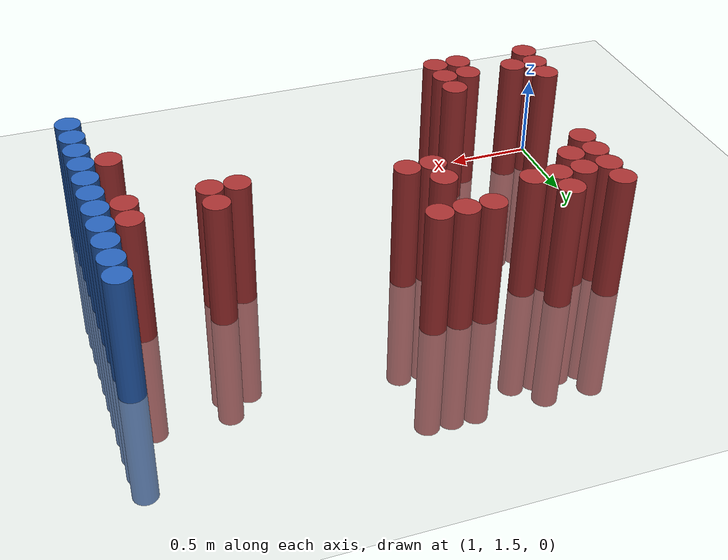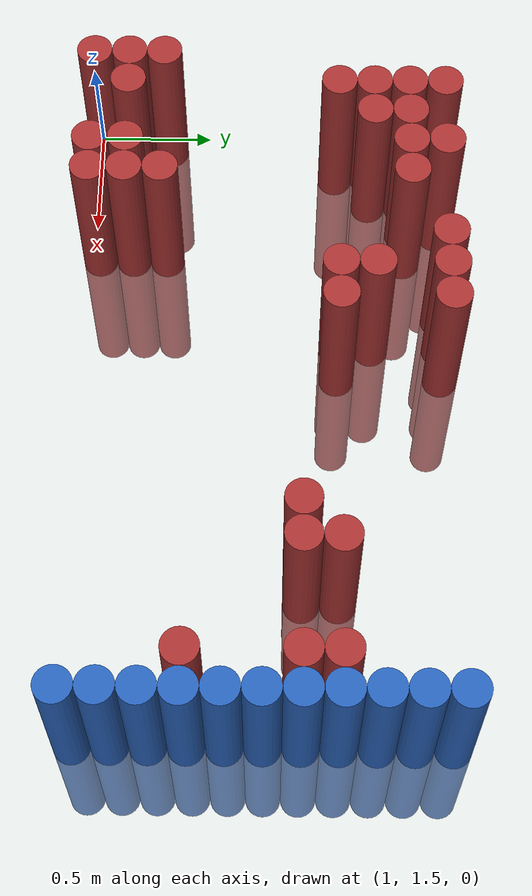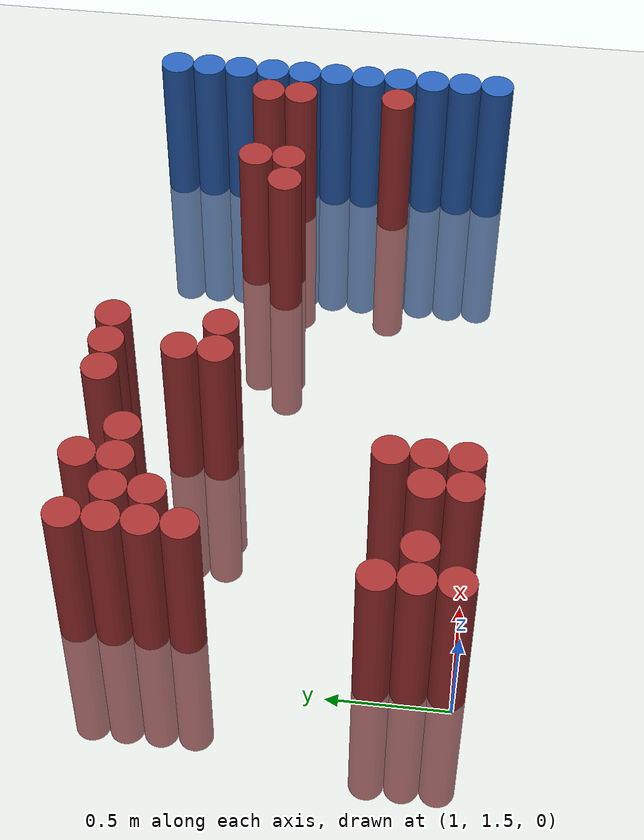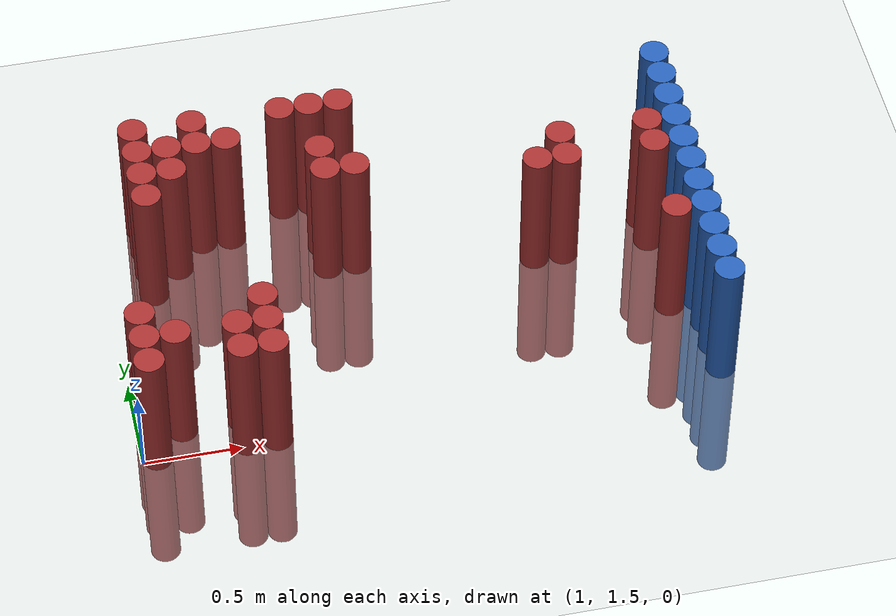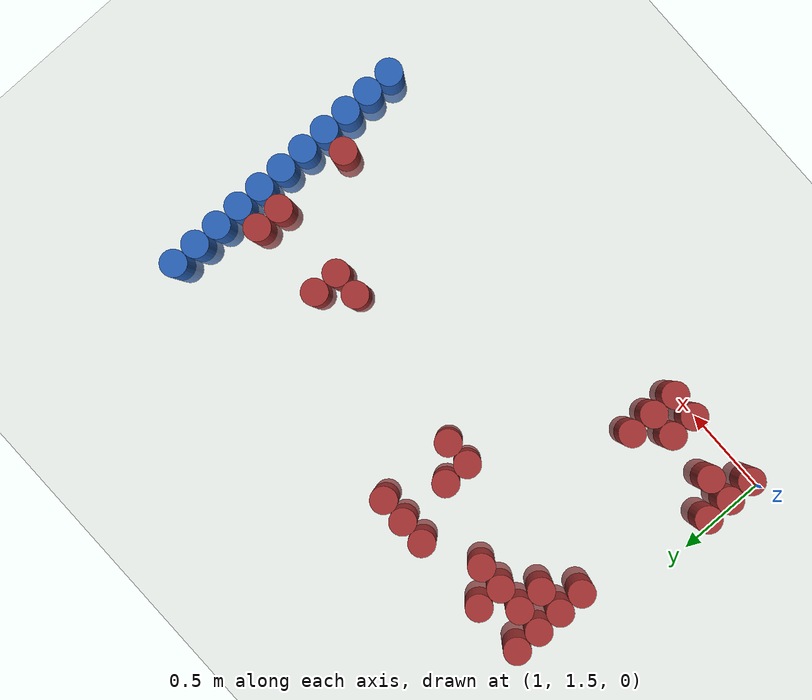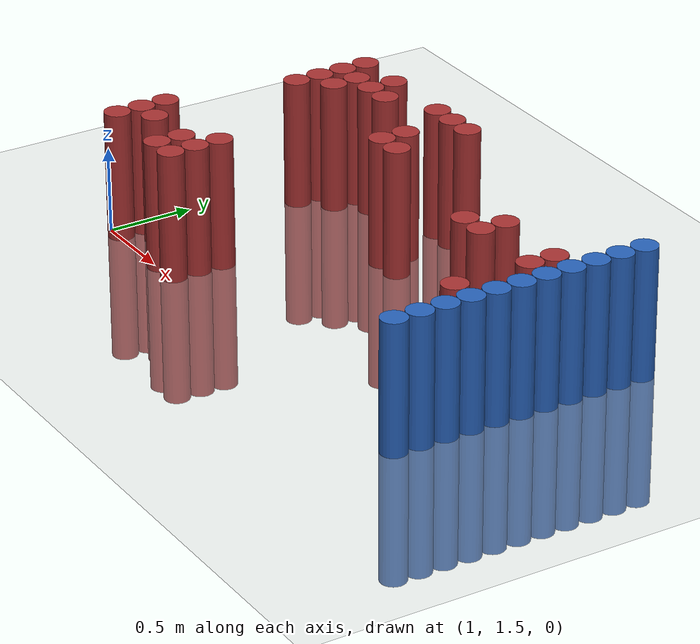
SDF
<sdf version="1.6">
 <world name="default">
  <model name="ground_plane">
   <static>1</static>
   <link name="link">
    <collision name="collision">
     <geometry><plane><normal>0 0 1</normal><size>100 100</size></plane></geometry>
     <surface><friction><ode><mu>100</mu><mu2>50</mu2></ode></friction></surface>
    </collision>
    <visual name="visual">
     <cast_shadows>0</cast_shadows>
     <geometry><plane><normal>0 0 1</normal><size>100 100</size></plane></geometry>
     <material>
      <script><uri>file://media/materials/scripts/gazebo.material</uri><name>Gazebo/Grey</name></script>
     </material>
    </visual>
   </link>
  </model>
  <model name="unit_cylinder_134">
   <static>1</static>
   <pose>3.925000 1.525000 0.000000 0.000000 0.000000 0.000000</pose>
   <link name="link">
    <inertial>
     <mass>1</mass>
     <inertia><ixx>0.145833</ixx><ixy>0</ixy><ixz>0</ixz><iyy>0.145833</iyy><iyz>0</iyz><izz>0.125</izz></inertia>
    </inertial>
    <collision name="collision">
     <geometry><cylinder><radius>0.075000</radius><length>1.5</length></cylinder></geometry>
    </collision>
    <visual name="visual">
     <geometry><cylinder><radius>0.075000</radius><length>1.5</length></cylinder></geometry>
     <material>
      <ambient>0.152000 0.379000 0.720000 1</ambient>
      <diffuse>0.152000 0.379000 0.720000 1</diffuse>
     </material>
     <material>
      <script><name>Gazebo/Grey</name><uri>file://media/materials/scripts/gazebo.material</uri></script>
     </material>
    </visual>
   </link>
  </model>
  <model name="unit_cylinder_136">
   <static>1</static>
   <pose>3.925000 1.675000 0.000000 0.000000 0.000000 0.000000</pose>
   <link name="link">
    <inertial>
     <mass>1</mass>
     <inertia><ixx>0.145833</ixx><ixy>0</ixy><ixz>0</ixz><iyy>0.145833</iyy><iyz>0</iyz><izz>0.125</izz></inertia>
    </inertial>
    <collision name="collision">
     <geometry><cylinder><radius>0.075000</radius><length>1.5</length></cylinder></geometry>
    </collision>
    <visual name="visual">
     <geometry><cylinder><radius>0.075000</radius><length>1.5</length></cylinder></geometry>
     <material>
      <ambient>0.152000 0.379000 0.720000 1</ambient>
      <diffuse>0.152000 0.379000 0.720000 1</diffuse>
     </material>
     <material>
      <script><name>Gazebo/Grey</name><uri>file://media/materials/scripts/gazebo.material</uri></script>
     </material>
    </visual>
   </link>
  </model>
  <model name="unit_cylinder_138">
   <static>1</static>
   <pose>3.925000 1.825000 0.000000 0.000000 0.000000 0.000000</pose>
   <link name="link">
    <inertial>
     <mass>1</mass>
     <inertia><ixx>0.145833</ixx><ixy>0</ixy><ixz>0</ixz><iyy>0.145833</iyy><iyz>0</iyz><izz>0.125</izz></inertia>
    </inertial>
    <collision name="collision">
     <geometry><cylinder><radius>0.075000</radius><length>1.5</length></cylinder></geometry>
    </collision>
    <visual name="visual">
     <geometry><cylinder><radius>0.075000</radius><length>1.5</length></cylinder></geometry>
     <material>
      <ambient>0.152000 0.379000 0.720000 1</ambient>
      <diffuse>0.152000 0.379000 0.720000 1</diffuse>
     </material>
     <material>
      <script><name>Gazebo/Grey</name><uri>file://media/materials/scripts/gazebo.material</uri></script>
     </material>
    </visual>
   </link>
  </model>
  <model name="unit_cylinder_140">
   <static>1</static>
   <pose>3.925000 1.975000 0.000000 0.000000 0.000000 0.000000</pose>
   <link name="link">
    <inertial>
     <mass>1</mass>
     <inertia><ixx>0.145833</ixx><ixy>0</ixy><ixz>0</ixz><iyy>0.145833</iyy><iyz>0</iyz><izz>0.125</izz></inertia>
    </inertial>
    <collision name="collision">
     <geometry><cylinder><radius>0.075000</radius><length>1.5</length></cylinder></geometry>
    </collision>
    <visual name="visual">
     <geometry><cylinder><radius>0.075000</radius><length>1.5</length></cylinder></geometry>
     <material>
      <ambient>0.152000 0.379000 0.720000 1</ambient>
      <diffuse>0.152000 0.379000 0.720000 1</diffuse>
     </material>
     <material>
      <script><name>Gazebo/Grey</name><uri>file://media/materials/scripts/gazebo.material</uri></script>
     </material>
    </visual>
   </link>
  </model>
  <model name="unit_cylinder_142">
   <static>1</static>
   <pose>3.925000 2.125000 0.000000 0.000000 0.000000 0.000000</pose>
   <link name="link">
    <inertial>
     <mass>1</mass>
     <inertia><ixx>0.145833</ixx><ixy>0</ixy><ixz>0</ixz><iyy>0.145833</iyy><iyz>0</iyz><izz>0.125</izz></inertia>
    </inertial>
    <collision name="collision">
     <geometry><cylinder><radius>0.075000</radius><length>1.5</length></cylinder></geometry>
    </collision>
    <visual name="visual">
     <geometry><cylinder><radius>0.075000</radius><length>1.5</length></cylinder></geometry>
     <material>
      <ambient>0.152000 0.379000 0.720000 1</ambient>
      <diffuse>0.152000 0.379000 0.720000 1</diffuse>
     </material>
     <material>
      <script><name>Gazebo/Grey</name><uri>file://media/materials/scripts/gazebo.material</uri></script>
     </material>
    </visual>
   </link>
  </model>
  <model name="unit_cylinder_144">
   <static>1</static>
   <pose>3.925000 2.275000 0.000000 0.000000 0.000000 0.000000</pose>
   <link name="link">
    <inertial>
     <mass>1</mass>
     <inertia><ixx>0.145833</ixx><ixy>0</ixy><ixz>0</ixz><iyy>0.145833</iyy><iyz>0</iyz><izz>0.125</izz></inertia>
    </inertial>
    <collision name="collision">
     <geometry><cylinder><radius>0.075000</radius><length>1.5</length></cylinder></geometry>
    </collision>
    <visual name="visual">
     <geometry><cylinder><radius>0.075000</radius><length>1.5</length></cylinder></geometry>
     <material>
      <ambient>0.152000 0.379000 0.720000 1</ambient>
      <diffuse>0.152000 0.379000 0.720000 1</diffuse>
     </material>
     <material>
      <script><name>Gazebo/Grey</name><uri>file://media/materials/scripts/gazebo.material</uri></script>
     </material>
    </visual>
   </link>
  </model>
  <model name="unit_cylinder_146">
   <static>1</static>
   <pose>3.925000 2.425000 0.000000 0.000000 0.000000 0.000000</pose>
   <link name="link">
    <inertial>
     <mass>1</mass>
     <inertia><ixx>0.145833</ixx><ixy>0</ixy><ixz>0</ixz><iyy>0.145833</iyy><iyz>0</iyz><izz>0.125</izz></inertia>
    </inertial>
    <collision name="collision">
     <geometry><cylinder><radius>0.075000</radius><length>1.5</length></cylinder></geometry>
    </collision>
    <visual name="visual">
     <geometry><cylinder><radius>0.075000</radius><length>1.5</length></cylinder></geometry>
     <material>
      <ambient>0.152000 0.379000 0.720000 1</ambient>
      <diffuse>0.152000 0.379000 0.720000 1</diffuse>
     </material>
     <material>
      <script><name>Gazebo/Grey</name><uri>file://media/materials/scripts/gazebo.material</uri></script>
     </material>
    </visual>
   </link>
  </model>
  <model name="unit_cylinder_148">
   <static>1</static>
   <pose>3.925000 2.575000 0.000000 0.000000 0.000000 0.000000</pose>
   <link name="link">
    <inertial>
     <mass>1</mass>
     <inertia><ixx>0.145833</ixx><ixy>0</ixy><ixz>0</ixz><iyy>0.145833</iyy><iyz>0</iyz><izz>0.125</izz></inertia>
    </inertial>
    <collision name="collision">
     <geometry><cylinder><radius>0.075000</radius><length>1.5</length></cylinder></geometry>
    </collision>
    <visual name="visual">
     <geometry><cylinder><radius>0.075000</radius><length>1.5</length></cylinder></geometry>
     <material>
      <ambient>0.152000 0.379000 0.720000 1</ambient>
      <diffuse>0.152000 0.379000 0.720000 1</diffuse>
     </material>
     <material>
      <script><name>Gazebo/Grey</name><uri>file://media/materials/scripts/gazebo.material</uri></script>
     </material>
    </visual>
   </link>
  </model>
  <model name="unit_cylinder_150">
   <static>1</static>
   <pose>3.925000 2.725000 0.000000 0.000000 0.000000 0.000000</pose>
   <link name="link">
    <inertial>
     <mass>1</mass>
     <inertia><ixx>0.145833</ixx><ixy>0</ixy><ixz>0</ixz><iyy>0.145833</iyy><iyz>0</iyz><izz>0.125</izz></inertia>
    </inertial>
    <collision name="collision">
     <geometry><cylinder><radius>0.075000</radius><length>1.5</length></cylinder></geometry>
    </collision>
    <visual name="visual">
     <geometry><cylinder><radius>0.075000</radius><length>1.5</length></cylinder></geometry>
     <material>
      <ambient>0.152000 0.379000 0.720000 1</ambient>
      <diffuse>0.152000 0.379000 0.720000 1</diffuse>
     </material>
     <material>
      <script><name>Gazebo/Grey</name><uri>file://media/materials/scripts/gazebo.material</uri></script>
     </material>
    </visual>
   </link>
  </model>
  <model name="unit_cylinder_152">
   <static>1</static>
   <pose>3.925000 2.875000 0.000000 0.000000 0.000000 0.000000</pose>
   <link name="link">
    <inertial>
     <mass>1</mass>
     <inertia><ixx>0.145833</ixx><ixy>0</ixy><ixz>0</ixz><iyy>0.145833</iyy><iyz>0</iyz><izz>0.125</izz></inertia>
    </inertial>
    <collision name="collision">
     <geometry><cylinder><radius>0.075000</radius><length>1.5</length></cylinder></geometry>
    </collision>
    <visual name="visual">
     <geometry><cylinder><radius>0.075000</radius><length>1.5</length></cylinder></geometry>
     <material>
      <ambient>0.152000 0.379000 0.720000 1</ambient>
      <diffuse>0.152000 0.379000 0.720000 1</diffuse>
     </material>
     <material>
      <script><name>Gazebo/Grey</name><uri>file://media/materials/scripts/gazebo.material</uri></script>
     </material>
    </visual>
   </link>
  </model>
  <model name="unit_cylinder_154">
   <static>1</static>
   <pose>3.925000 3.025000 0.000000 0.000000 0.000000 0.000000</pose>
   <link name="link">
    <inertial>
     <mass>1</mass>
     <inertia><ixx>0.145833</ixx><ixy>0</ixy><ixz>0</ixz><iyy>0.145833</iyy><iyz>0</iyz><izz>0.125</izz></inertia>
    </inertial>
    <collision name="collision">
     <geometry><cylinder><radius>0.075000</radius><length>1.5</length></cylinder></geometry>
    </collision>
    <visual name="visual">
     <geometry><cylinder><radius>0.075000</radius><length>1.5</length></cylinder></geometry>
     <material>
      <ambient>0.152000 0.379000 0.720000 1</ambient>
      <diffuse>0.152000 0.379000 0.720000 1</diffuse>
     </material>
     <material>
      <script><name>Gazebo/Grey</name><uri>file://media/materials/scripts/gazebo.material</uri></script>
     </material>
    </visual>
   </link>
  </model>
  <model name="unit_cylinder_417">
   <static>1</static>
   <pose>1.075000 1.525000 0.000000 0.000000 0.000000 0.000000</pose>
   <link name="link">
    <inertial>
     <mass>1</mass>
     <inertia><ixx>0.145833</ixx><ixy>0</ixy><ixz>0</ixz><iyy>0.145833</iyy><iyz>0</iyz><izz>0.125</izz></inertia>
    </inertial>
    <collision name="collision">
     <geometry><cylinder><radius>0.075000</radius><length>1.5</length></cylinder></geometry>
    </collision>
    <visual name="visual">
     <geometry><cylinder><radius>0.075000</radius><length>1.5</length></cylinder></geometry>
     <material>
      <ambient>0.648000 0.192000 0.192000 1</ambient>
      <diffuse>0.648000 0.192000 0.192000 1</diffuse>
     </material>
     <material>
      <script><name>Gazebo/Grey</name><uri>file://media/materials/scripts/gazebo.material</uri></script>
     </material>
    </visual>
   </link>
  </model>
  <model name="unit_cylinder_418">
   <static>1</static>
   <pose>1.075000 1.675000 0.000000 0.000000 0.000000 0.000000</pose>
   <link name="link">
    <inertial>
     <mass>1</mass>
     <inertia><ixx>0.145833</ixx><ixy>0</ixy><ixz>0</ixz><iyy>0.145833</iyy><iyz>0</iyz><izz>0.125</izz></inertia>
    </inertial>
    <collision name="collision">
     <geometry><cylinder><radius>0.075000</radius><length>1.5</length></cylinder></geometry>
    </collision>
    <visual name="visual">
     <geometry><cylinder><radius>0.075000</radius><length>1.5</length></cylinder></geometry>
     <material>
      <ambient>0.648000 0.192000 0.192000 1</ambient>
      <diffuse>0.648000 0.192000 0.192000 1</diffuse>
     </material>
     <material>
      <script><name>Gazebo/Grey</name><uri>file://media/materials/scripts/gazebo.material</uri></script>
     </material>
    </visual>
   </link>
  </model>
  <model name="unit_cylinder_419">
   <static>1</static>
   <pose>1.075000 1.825000 0.000000 0.000000 0.000000 0.000000</pose>
   <link name="link">
    <inertial>
     <mass>1</mass>
     <inertia><ixx>0.145833</ixx><ixy>0</ixy><ixz>0</ixz><iyy>0.145833</iyy><iyz>0</iyz><izz>0.125</izz></inertia>
    </inertial>
    <collision name="collision">
     <geometry><cylinder><radius>0.075000</radius><length>1.5</length></cylinder></geometry>
    </collision>
    <visual name="visual">
     <geometry><cylinder><radius>0.075000</radius><length>1.5</length></cylinder></geometry>
     <material>
      <ambient>0.648000 0.192000 0.192000 1</ambient>
      <diffuse>0.648000 0.192000 0.192000 1</diffuse>
     </material>
     <material>
      <script><name>Gazebo/Grey</name><uri>file://media/materials/scripts/gazebo.material</uri></script>
     </material>
    </visual>
   </link>
  </model>
  <model name="unit_cylinder_427">
   <static>1</static>
   <pose>1.225000 1.675000 0.000000 0.000000 0.000000 0.000000</pose>
   <link name="link">
    <inertial>
     <mass>1</mass>
     <inertia><ixx>0.145833</ixx><ixy>0</ixy><ixz>0</ixz><iyy>0.145833</iyy><iyz>0</iyz><izz>0.125</izz></inertia>
    </inertial>
    <collision name="collision">
     <geometry><cylinder><radius>0.075000</radius><length>1.5</length></cylinder></geometry>
    </collision>
    <visual name="visual">
     <geometry><cylinder><radius>0.075000</radius><length>1.5</length></cylinder></geometry>
     <material>
      <ambient>0.648000 0.192000 0.192000 1</ambient>
      <diffuse>0.648000 0.192000 0.192000 1</diffuse>
     </material>
     <material>
      <script><name>Gazebo/Grey</name><uri>file://media/materials/scripts/gazebo.material</uri></script>
     </material>
    </visual>
   </link>
  </model>
  <model name="unit_cylinder_428">
   <static>1</static>
   <pose>1.225000 2.575000 0.000000 0.000000 0.000000 0.000000</pose>
   <link name="link">
    <inertial>
     <mass>1</mass>
     <inertia><ixx>0.145833</ixx><ixy>0</ixy><ixz>0</ixz><iyy>0.145833</iyy><iyz>0</iyz><izz>0.125</izz></inertia>
    </inertial>
    <collision name="collision">
     <geometry><cylinder><radius>0.075000</radius><length>1.5</length></cylinder></geometry>
    </collision>
    <visual name="visual">
     <geometry><cylinder><radius>0.075000</radius><length>1.5</length></cylinder></geometry>
     <material>
      <ambient>0.648000 0.192000 0.192000 1</ambient>
      <diffuse>0.648000 0.192000 0.192000 1</diffuse>
     </material>
     <material>
      <script><name>Gazebo/Grey</name><uri>file://media/materials/scripts/gazebo.material</uri></script>
     </material>
    </visual>
   </link>
  </model>
  <model name="unit_cylinder_429">
   <static>1</static>
   <pose>1.225000 2.725000 0.000000 0.000000 0.000000 0.000000</pose>
   <link name="link">
    <inertial>
     <mass>1</mass>
     <inertia><ixx>0.145833</ixx><ixy>0</ixy><ixz>0</ixz><iyy>0.145833</iyy><iyz>0</iyz><izz>0.125</izz></inertia>
    </inertial>
    <collision name="collision">
     <geometry><cylinder><radius>0.075000</radius><length>1.5</length></cylinder></geometry>
    </collision>
    <visual name="visual">
     <geometry><cylinder><radius>0.075000</radius><length>1.5</length></cylinder></geometry>
     <material>
      <ambient>0.648000 0.192000 0.192000 1</ambient>
      <diffuse>0.648000 0.192000 0.192000 1</diffuse>
     </material>
     <material>
      <script><name>Gazebo/Grey</name><uri>file://media/materials/scripts/gazebo.material</uri></script>
     </material>
    </visual>
   </link>
  </model>
  <model name="unit_cylinder_430">
   <static>1</static>
   <pose>1.225000 2.875000 0.000000 0.000000 0.000000 0.000000</pose>
   <link name="link">
    <inertial>
     <mass>1</mass>
     <inertia><ixx>0.145833</ixx><ixy>0</ixy><ixz>0</ixz><iyy>0.145833</iyy><iyz>0</iyz><izz>0.125</izz></inertia>
    </inertial>
    <collision name="collision">
     <geometry><cylinder><radius>0.075000</radius><length>1.5</length></cylinder></geometry>
    </collision>
    <visual name="visual">
     <geometry><cylinder><radius>0.075000</radius><length>1.5</length></cylinder></geometry>
     <material>
      <ambient>0.648000 0.192000 0.192000 1</ambient>
      <diffuse>0.648000 0.192000 0.192000 1</diffuse>
     </material>
     <material>
      <script><name>Gazebo/Grey</name><uri>file://media/materials/scripts/gazebo.material</uri></script>
     </material>
    </visual>
   </link>
  </model>
  <model name="unit_cylinder_431">
   <static>1</static>
   <pose>1.225000 3.025000 0.000000 0.000000 0.000000 0.000000</pose>
   <link name="link">
    <inertial>
     <mass>1</mass>
     <inertia><ixx>0.145833</ixx><ixy>0</ixy><ixz>0</ixz><iyy>0.145833</iyy><iyz>0</iyz><izz>0.125</izz></inertia>
    </inertial>
    <collision name="collision">
     <geometry><cylinder><radius>0.075000</radius><length>1.5</length></cylinder></geometry>
    </collision>
    <visual name="visual">
     <geometry><cylinder><radius>0.075000</radius><length>1.5</length></cylinder></geometry>
     <material>
      <ambient>0.648000 0.192000 0.192000 1</ambient>
      <diffuse>0.648000 0.192000 0.192000 1</diffuse>
     </material>
     <material>
      <script><name>Gazebo/Grey</name><uri>file://media/materials/scripts/gazebo.material</uri></script>
     </material>
    </visual>
   </link>
  </model>
  <model name="unit_cylinder_439">
   <static>1</static>
   <pose>1.375000 2.725000 0.000000 0.000000 0.000000 0.000000</pose>
   <link name="link">
    <inertial>
     <mass>1</mass>
     <inertia><ixx>0.145833</ixx><ixy>0</ixy><ixz>0</ixz><iyy>0.145833</iyy><iyz>0</iyz><izz>0.125</izz></inertia>
    </inertial>
    <collision name="collision">
     <geometry><cylinder><radius>0.075000</radius><length>1.5</length></cylinder></geometry>
    </collision>
    <visual name="visual">
     <geometry><cylinder><radius>0.075000</radius><length>1.5</length></cylinder></geometry>
     <material>
      <ambient>0.648000 0.192000 0.192000 1</ambient>
      <diffuse>0.648000 0.192000 0.192000 1</diffuse>
     </material>
     <material>
      <script><name>Gazebo/Grey</name><uri>file://media/materials/scripts/gazebo.material</uri></script>
     </material>
    </visual>
   </link>
  </model>
  <model name="unit_cylinder_440">
   <static>1</static>
   <pose>1.375000 2.875000 0.000000 0.000000 0.000000 0.000000</pose>
   <link name="link">
    <inertial>
     <mass>1</mass>
     <inertia><ixx>0.145833</ixx><ixy>0</ixy><ixz>0</ixz><iyy>0.145833</iyy><iyz>0</iyz><izz>0.125</izz></inertia>
    </inertial>
    <collision name="collision">
     <geometry><cylinder><radius>0.075000</radius><length>1.5</length></cylinder></geometry>
    </collision>
    <visual name="visual">
     <geometry><cylinder><radius>0.075000</radius><length>1.5</length></cylinder></geometry>
     <material>
      <ambient>0.648000 0.192000 0.192000 1</ambient>
      <diffuse>0.648000 0.192000 0.192000 1</diffuse>
     </material>
     <material>
      <script><name>Gazebo/Grey</name><uri>file://media/materials/scripts/gazebo.material</uri></script>
     </material>
    </visual>
   </link>
  </model>
  <model name="unit_cylinder_450">
   <static>1</static>
   <pose>1.525000 1.525000 0.000000 0.000000 0.000000 0.000000</pose>
   <link name="link">
    <inertial>
     <mass>1</mass>
     <inertia><ixx>0.145833</ixx><ixy>0</ixy><ixz>0</ixz><iyy>0.145833</iyy><iyz>0</iyz><izz>0.125</izz></inertia>
    </inertial>
    <collision name="collision">
     <geometry><cylinder><radius>0.075000</radius><length>1.5</length></cylinder></geometry>
    </collision>
    <visual name="visual">
     <geometry><cylinder><radius>0.075000</radius><length>1.5</length></cylinder></geometry>
     <material>
      <ambient>0.648000 0.192000 0.192000 1</ambient>
      <diffuse>0.648000 0.192000 0.192000 1</diffuse>
     </material>
     <material>
      <script><name>Gazebo/Grey</name><uri>file://media/materials/scripts/gazebo.material</uri></script>
     </material>
    </visual>
   </link>
  </model>
  <model name="unit_cylinder_451">
   <static>1</static>
   <pose>1.525000 1.675000 0.000000 0.000000 0.000000 0.000000</pose>
   <link name="link">
    <inertial>
     <mass>1</mass>
     <inertia><ixx>0.145833</ixx><ixy>0</ixy><ixz>0</ixz><iyy>0.145833</iyy><iyz>0</iyz><izz>0.125</izz></inertia>
    </inertial>
    <collision name="collision">
     <geometry><cylinder><radius>0.075000</radius><length>1.5</length></cylinder></geometry>
    </collision>
    <visual name="visual">
     <geometry><cylinder><radius>0.075000</radius><length>1.5</length></cylinder></geometry>
     <material>
      <ambient>0.648000 0.192000 0.192000 1</ambient>
      <diffuse>0.648000 0.192000 0.192000 1</diffuse>
     </material>
     <material>
      <script><name>Gazebo/Grey</name><uri>file://media/materials/scripts/gazebo.material</uri></script>
     </material>
    </visual>
   </link>
  </model>
  <model name="unit_cylinder_452">
   <static>1</static>
   <pose>1.525000 2.875000 0.000000 0.000000 0.000000 0.000000</pose>
   <link name="link">
    <inertial>
     <mass>1</mass>
     <inertia><ixx>0.145833</ixx><ixy>0</ixy><ixz>0</ixz><iyy>0.145833</iyy><iyz>0</iyz><izz>0.125</izz></inertia>
    </inertial>
    <collision name="collision">
     <geometry><cylinder><radius>0.075000</radius><length>1.5</length></cylinder></geometry>
    </collision>
    <visual name="visual">
     <geometry><cylinder><radius>0.075000</radius><length>1.5</length></cylinder></geometry>
     <material>
      <ambient>0.648000 0.192000 0.192000 1</ambient>
      <diffuse>0.648000 0.192000 0.192000 1</diffuse>
     </material>
     <material>
      <script><name>Gazebo/Grey</name><uri>file://media/materials/scripts/gazebo.material</uri></script>
     </material>
    </visual>
   </link>
  </model>
  <model name="unit_cylinder_453">
   <static>1</static>
   <pose>1.525000 3.025000 0.000000 0.000000 0.000000 0.000000</pose>
   <link name="link">
    <inertial>
     <mass>1</mass>
     <inertia><ixx>0.145833</ixx><ixy>0</ixy><ixz>0</ixz><iyy>0.145833</iyy><iyz>0</iyz><izz>0.125</izz></inertia>
    </inertial>
    <collision name="collision">
     <geometry><cylinder><radius>0.075000</radius><length>1.5</length></cylinder></geometry>
    </collision>
    <visual name="visual">
     <geometry><cylinder><radius>0.075000</radius><length>1.5</length></cylinder></geometry>
     <material>
      <ambient>0.648000 0.192000 0.192000 1</ambient>
      <diffuse>0.648000 0.192000 0.192000 1</diffuse>
     </material>
     <material>
      <script><name>Gazebo/Grey</name><uri>file://media/materials/scripts/gazebo.material</uri></script>
     </material>
    </visual>
   </link>
  </model>
  <model name="unit_cylinder_460">
   <static>1</static>
   <pose>1.675000 1.525000 0.000000 0.000000 0.000000 0.000000</pose>
   <link name="link">
    <inertial>
     <mass>1</mass>
     <inertia><ixx>0.145833</ixx><ixy>0</ixy><ixz>0</ixz><iyy>0.145833</iyy><iyz>0</iyz><izz>0.125</izz></inertia>
    </inertial>
    <collision name="collision">
     <geometry><cylinder><radius>0.075000</radius><length>1.5</length></cylinder></geometry>
    </collision>
    <visual name="visual">
     <geometry><cylinder><radius>0.075000</radius><length>1.5</length></cylinder></geometry>
     <material>
      <ambient>0.648000 0.192000 0.192000 1</ambient>
      <diffuse>0.648000 0.192000 0.192000 1</diffuse>
     </material>
     <material>
      <script><name>Gazebo/Grey</name><uri>file://media/materials/scripts/gazebo.material</uri></script>
     </material>
    </visual>
   </link>
  </model>
  <model name="unit_cylinder_461">
   <static>1</static>
   <pose>1.675000 1.675000 0.000000 0.000000 0.000000 0.000000</pose>
   <link name="link">
    <inertial>
     <mass>1</mass>
     <inertia><ixx>0.145833</ixx><ixy>0</ixy><ixz>0</ixz><iyy>0.145833</iyy><iyz>0</iyz><izz>0.125</izz></inertia>
    </inertial>
    <collision name="collision">
     <geometry><cylinder><radius>0.075000</radius><length>1.5</length></cylinder></geometry>
    </collision>
    <visual name="visual">
     <geometry><cylinder><radius>0.075000</radius><length>1.5</length></cylinder></geometry>
     <material>
      <ambient>0.648000 0.192000 0.192000 1</ambient>
      <diffuse>0.648000 0.192000 0.192000 1</diffuse>
     </material>
     <material>
      <script><name>Gazebo/Grey</name><uri>file://media/materials/scripts/gazebo.material</uri></script>
     </material>
    </visual>
   </link>
  </model>
  <model name="unit_cylinder_462">
   <static>1</static>
   <pose>1.675000 1.825000 0.000000 0.000000 0.000000 0.000000</pose>
   <link name="link">
    <inertial>
     <mass>1</mass>
     <inertia><ixx>0.145833</ixx><ixy>0</ixy><ixz>0</ixz><iyy>0.145833</iyy><iyz>0</iyz><izz>0.125</izz></inertia>
    </inertial>
    <collision name="collision">
     <geometry><cylinder><radius>0.075000</radius><length>1.5</length></cylinder></geometry>
    </collision>
    <visual name="visual">
     <geometry><cylinder><radius>0.075000</radius><length>1.5</length></cylinder></geometry>
     <material>
      <ambient>0.648000 0.192000 0.192000 1</ambient>
      <diffuse>0.648000 0.192000 0.192000 1</diffuse>
     </material>
     <material>
      <script><name>Gazebo/Grey</name><uri>file://media/materials/scripts/gazebo.material</uri></script>
     </material>
    </visual>
   </link>
  </model>
  <model name="unit_cylinder_463">
   <static>1</static>
   <pose>1.675000 2.875000 0.000000 0.000000 0.000000 0.000000</pose>
   <link name="link">
    <inertial>
     <mass>1</mass>
     <inertia><ixx>0.145833</ixx><ixy>0</ixy><ixz>0</ixz><iyy>0.145833</iyy><iyz>0</iyz><izz>0.125</izz></inertia>
    </inertial>
    <collision name="collision">
     <geometry><cylinder><radius>0.075000</radius><length>1.5</length></cylinder></geometry>
    </collision>
    <visual name="visual">
     <geometry><cylinder><radius>0.075000</radius><length>1.5</length></cylinder></geometry>
     <material>
      <ambient>0.648000 0.192000 0.192000 1</ambient>
      <diffuse>0.648000 0.192000 0.192000 1</diffuse>
     </material>
     <material>
      <script><name>Gazebo/Grey</name><uri>file://media/materials/scripts/gazebo.material</uri></script>
     </material>
    </visual>
   </link>
  </model>
  <model name="unit_cylinder_474">
   <static>1</static>
   <pose>1.975000 3.025000 0.000000 0.000000 0.000000 0.000000</pose>
   <link name="link">
    <inertial>
     <mass>1</mass>
     <inertia><ixx>0.145833</ixx><ixy>0</ixy><ixz>0</ixz><iyy>0.145833</iyy><iyz>0</iyz><izz>0.125</izz></inertia>
    </inertial>
    <collision name="collision">
     <geometry><cylinder><radius>0.075000</radius><length>1.5</length></cylinder></geometry>
    </collision>
    <visual name="visual">
     <geometry><cylinder><radius>0.075000</radius><length>1.5</length></cylinder></geometry>
     <material>
      <ambient>0.648000 0.192000 0.192000 1</ambient>
      <diffuse>0.648000 0.192000 0.192000 1</diffuse>
     </material>
     <material>
      <script><name>Gazebo/Grey</name><uri>file://media/materials/scripts/gazebo.material</uri></script>
     </material>
    </visual>
   </link>
  </model>
  <model name="unit_cylinder_481">
   <static>1</static>
   <pose>2.125000 2.575000 0.000000 0.000000 0.000000 0.000000</pose>
   <link name="link">
    <inertial>
     <mass>1</mass>
     <inertia><ixx>0.145833</ixx><ixy>0</ixy><ixz>0</ixz><iyy>0.145833</iyy><iyz>0</iyz><izz>0.125</izz></inertia>
    </inertial>
    <collision name="collision">
     <geometry><cylinder><radius>0.075000</radius><length>1.5</length></cylinder></geometry>
    </collision>
    <visual name="visual">
     <geometry><cylinder><radius>0.075000</radius><length>1.5</length></cylinder></geometry>
     <material>
      <ambient>0.648000 0.192000 0.192000 1</ambient>
      <diffuse>0.648000 0.192000 0.192000 1</diffuse>
     </material>
     <material>
      <script><name>Gazebo/Grey</name><uri>file://media/materials/scripts/gazebo.material</uri></script>
     </material>
    </visual>
   </link>
  </model>
  <model name="unit_cylinder_482">
   <static>1</static>
   <pose>2.125000 2.725000 0.000000 0.000000 0.000000 0.000000</pose>
   <link name="link">
    <inertial>
     <mass>1</mass>
     <inertia><ixx>0.145833</ixx><ixy>0</ixy><ixz>0</ixz><iyy>0.145833</iyy><iyz>0</iyz><izz>0.125</izz></inertia>
    </inertial>
    <collision name="collision">
     <geometry><cylinder><radius>0.075000</radius><length>1.5</length></cylinder></geometry>
    </collision>
    <visual name="visual">
     <geometry><cylinder><radius>0.075000</radius><length>1.5</length></cylinder></geometry>
     <material>
      <ambient>0.648000 0.192000 0.192000 1</ambient>
      <diffuse>0.648000 0.192000 0.192000 1</diffuse>
     </material>
     <material>
      <script><name>Gazebo/Grey</name><uri>file://media/materials/scripts/gazebo.material</uri></script>
     </material>
    </visual>
   </link>
  </model>
  <model name="unit_cylinder_483">
   <static>1</static>
   <pose>2.125000 3.025000 0.000000 0.000000 0.000000 0.000000</pose>
   <link name="link">
    <inertial>
     <mass>1</mass>
     <inertia><ixx>0.145833</ixx><ixy>0</ixy><ixz>0</ixz><iyy>0.145833</iyy><iyz>0</iyz><izz>0.125</izz></inertia>
    </inertial>
    <collision name="collision">
     <geometry><cylinder><radius>0.075000</radius><length>1.5</length></cylinder></geometry>
    </collision>
    <visual name="visual">
     <geometry><cylinder><radius>0.075000</radius><length>1.5</length></cylinder></geometry>
     <material>
      <ambient>0.648000 0.192000 0.192000 1</ambient>
      <diffuse>0.648000 0.192000 0.192000 1</diffuse>
     </material>
     <material>
      <script><name>Gazebo/Grey</name><uri>file://media/materials/scripts/gazebo.material</uri></script>
     </material>
    </visual>
   </link>
  </model>
  <model name="unit_cylinder_490">
   <static>1</static>
   <pose>2.275000 2.575000 0.000000 0.000000 0.000000 0.000000</pose>
   <link name="link">
    <inertial>
     <mass>1</mass>
     <inertia><ixx>0.145833</ixx><ixy>0</ixy><ixz>0</ixz><iyy>0.145833</iyy><iyz>0</iyz><izz>0.125</izz></inertia>
    </inertial>
    <collision name="collision">
     <geometry><cylinder><radius>0.075000</radius><length>1.5</length></cylinder></geometry>
    </collision>
    <visual name="visual">
     <geometry><cylinder><radius>0.075000</radius><length>1.5</length></cylinder></geometry>
     <material>
      <ambient>0.648000 0.192000 0.192000 1</ambient>
      <diffuse>0.648000 0.192000 0.192000 1</diffuse>
     </material>
     <material>
      <script><name>Gazebo/Grey</name><uri>file://media/materials/scripts/gazebo.material</uri></script>
     </material>
    </visual>
   </link>
  </model>
  <model name="unit_cylinder_491">
   <static>1</static>
   <pose>2.275000 3.025000 0.000000 0.000000 0.000000 0.000000</pose>
   <link name="link">
    <inertial>
     <mass>1</mass>
     <inertia><ixx>0.145833</ixx><ixy>0</ixy><ixz>0</ixz><iyy>0.145833</iyy><iyz>0</iyz><izz>0.125</izz></inertia>
    </inertial>
    <collision name="collision">
     <geometry><cylinder><radius>0.075000</radius><length>1.5</length></cylinder></geometry>
    </collision>
    <visual name="visual">
     <geometry><cylinder><radius>0.075000</radius><length>1.5</length></cylinder></geometry>
     <material>
      <ambient>0.648000 0.192000 0.192000 1</ambient>
      <diffuse>0.648000 0.192000 0.192000 1</diffuse>
     </material>
     <material>
      <script><name>Gazebo/Grey</name><uri>file://media/materials/scripts/gazebo.material</uri></script>
     </material>
    </visual>
   </link>
  </model>
  <model name="unit_cylinder_532">
   <static>1</static>
   <pose>3.175000 2.425000 0.000000 0.000000 0.000000 0.000000</pose>
   <link name="link">
    <inertial>
     <mass>1</mass>
     <inertia><ixx>0.145833</ixx><ixy>0</ixy><ixz>0</ixz><iyy>0.145833</iyy><iyz>0</iyz><izz>0.125</izz></inertia>
    </inertial>
    <collision name="collision">
     <geometry><cylinder><radius>0.075000</radius><length>1.5</length></cylinder></geometry>
    </collision>
    <visual name="visual">
     <geometry><cylinder><radius>0.075000</radius><length>1.5</length></cylinder></geometry>
     <material>
      <ambient>0.648000 0.192000 0.192000 1</ambient>
      <diffuse>0.648000 0.192000 0.192000 1</diffuse>
     </material>
     <material>
      <script><name>Gazebo/Grey</name><uri>file://media/materials/scripts/gazebo.material</uri></script>
     </material>
    </visual>
   </link>
  </model>
  <model name="unit_cylinder_540">
   <static>1</static>
   <pose>3.325000 2.425000 0.000000 0.000000 0.000000 0.000000</pose>
   <link name="link">
    <inertial>
     <mass>1</mass>
     <inertia><ixx>0.145833</ixx><ixy>0</ixy><ixz>0</ixz><iyy>0.145833</iyy><iyz>0</iyz><izz>0.125</izz></inertia>
    </inertial>
    <collision name="collision">
     <geometry><cylinder><radius>0.075000</radius><length>1.5</length></cylinder></geometry>
    </collision>
    <visual name="visual">
     <geometry><cylinder><radius>0.075000</radius><length>1.5</length></cylinder></geometry>
     <material>
      <ambient>0.648000 0.192000 0.192000 1</ambient>
      <diffuse>0.648000 0.192000 0.192000 1</diffuse>
     </material>
     <material>
      <script><name>Gazebo/Grey</name><uri>file://media/materials/scripts/gazebo.material</uri></script>
     </material>
    </visual>
   </link>
  </model>
  <model name="unit_cylinder_541">
   <static>1</static>
   <pose>3.325000 2.575000 0.000000 0.000000 0.000000 0.000000</pose>
   <link name="link">
    <inertial>
     <mass>1</mass>
     <inertia><ixx>0.145833</ixx><ixy>0</ixy><ixz>0</ixz><iyy>0.145833</iyy><iyz>0</iyz><izz>0.125</izz></inertia>
    </inertial>
    <collision name="collision">
     <geometry><cylinder><radius>0.075000</radius><length>1.5</length></cylinder></geometry>
    </collision>
    <visual name="visual">
     <geometry><cylinder><radius>0.075000</radius><length>1.5</length></cylinder></geometry>
     <material>
      <ambient>0.648000 0.192000 0.192000 1</ambient>
      <diffuse>0.648000 0.192000 0.192000 1</diffuse>
     </material>
     <material>
      <script><name>Gazebo/Grey</name><uri>file://media/materials/scripts/gazebo.material</uri></script>
     </material>
    </visual>
   </link>
  </model>
  <model name="unit_cylinder_561">
   <static>1</static>
   <pose>3.775000 1.975000 0.000000 0.000000 0.000000 0.000000</pose>
   <link name="link">
    <inertial>
     <mass>1</mass>
     <inertia><ixx>0.145833</ixx><ixy>0</ixy><ixz>0</ixz><iyy>0.145833</iyy><iyz>0</iyz><izz>0.125</izz></inertia>
    </inertial>
    <collision name="collision">
     <geometry><cylinder><radius>0.075000</radius><length>1.5</length></cylinder></geometry>
    </collision>
    <visual name="visual">
     <geometry><cylinder><radius>0.075000</radius><length>1.5</length></cylinder></geometry>
     <material>
      <ambient>0.648000 0.192000 0.192000 1</ambient>
      <diffuse>0.648000 0.192000 0.192000 1</diffuse>
     </material>
     <material>
      <script><name>Gazebo/Grey</name><uri>file://media/materials/scripts/gazebo.material</uri></script>
     </material>
    </visual>
   </link>
  </model>
  <model name="unit_cylinder_562">
   <static>1</static>
   <pose>3.775000 2.425000 0.000000 0.000000 0.000000 0.000000</pose>
   <link name="link">
    <inertial>
     <mass>1</mass>
     <inertia><ixx>0.145833</ixx><ixy>0</ixy><ixz>0</ixz><iyy>0.145833</iyy><iyz>0</iyz><izz>0.125</izz></inertia>
    </inertial>
    <collision name="collision">
     <geometry><cylinder><radius>0.075000</radius><length>1.5</length></cylinder></geometry>
    </collision>
    <visual name="visual">
     <geometry><cylinder><radius>0.075000</radius><length>1.5</length></cylinder></geometry>
     <material>
      <ambient>0.648000 0.192000 0.192000 1</ambient>
      <diffuse>0.648000 0.192000 0.192000 1</diffuse>
     </material>
     <material>
      <script><name>Gazebo/Grey</name><uri>file://media/materials/scripts/gazebo.material</uri></script>
     </material>
    </visual>
   </link>
  </model>
  <model name="unit_cylinder_563">
   <static>1</static>
   <pose>3.775000 2.575000 0.000000 0.000000 0.000000 0.000000</pose>
   <link name="link">
    <inertial>
     <mass>1</mass>
     <inertia><ixx>0.145833</ixx><ixy>0</ixy><ixz>0</ixz><iyy>0.145833</iyy><iyz>0</iyz><izz>0.125</izz></inertia>
    </inertial>
    <collision name="collision">
     <geometry><cylinder><radius>0.075000</radius><length>1.5</length></cylinder></geometry>
    </collision>
    <visual name="visual">
     <geometry><cylinder><radius>0.075000</radius><length>1.5</length></cylinder></geometry>
     <material>
      <ambient>0.648000 0.192000 0.192000 1</ambient>
      <diffuse>0.648000 0.192000 0.192000 1</diffuse>
     </material>
     <material>
      <script><name>Gazebo/Grey</name><uri>file://media/materials/scripts/gazebo.material</uri></script>
     </material>
    </visual>
   </link>
  </model>
  <model name="unit_cylinder_595">
   <static>1</static>
   <pose>3.925000 1.525000 0.000000 0.000000 0.000000 0.000000</pose>
   <link name="link">
    <inertial>
     <mass>1</mass>
     <inertia><ixx>0.145833</ixx><ixy>0</ixy><ixz>0</ixz><iyy>0.145833</iyy><iyz>0</iyz><izz>0.125</izz></inertia>
    </inertial>
    <collision name="collision">
     <geometry><cylinder><radius>0.075000</radius><length>1.5</length></cylinder></geometry>
    </collision>
    <visual name="visual">
     <geometry><cylinder><radius>0.075000</radius><length>1.5</length></cylinder></geometry>
     <material>
      <ambient>0.152000 0.379000 0.720000 1</ambient>
      <diffuse>0.152000 0.379000 0.720000 1</diffuse>
     </material>
     <material>
      <script><name>Gazebo/Grey</name><uri>file://media/materials/scripts/gazebo.material</uri></script>
     </material>
    </visual>
   </link>
  </model>
  <model name="unit_cylinder_596">
   <static>1</static>
   <pose>3.925000 1.675000 0.000000 0.000000 0.000000 0.000000</pose>
   <link name="link">
    <inertial>
     <mass>1</mass>
     <inertia><ixx>0.145833</ixx><ixy>0</ixy><ixz>0</ixz><iyy>0.145833</iyy><iyz>0</iyz><izz>0.125</izz></inertia>
    </inertial>
    <collision name="collision">
     <geometry><cylinder><radius>0.075000</radius><length>1.5</length></cylinder></geometry>
    </collision>
    <visual name="visual">
     <geometry><cylinder><radius>0.075000</radius><length>1.5</length></cylinder></geometry>
     <material>
      <ambient>0.152000 0.379000 0.720000 1</ambient>
      <diffuse>0.152000 0.379000 0.720000 1</diffuse>
     </material>
     <material>
      <script><name>Gazebo/Grey</name><uri>file://media/materials/scripts/gazebo.material</uri></script>
     </material>
    </visual>
   </link>
  </model>
  <model name="unit_cylinder_597">
   <static>1</static>
   <pose>3.925000 1.825000 0.000000 0.000000 0.000000 0.000000</pose>
   <link name="link">
    <inertial>
     <mass>1</mass>
     <inertia><ixx>0.145833</ixx><ixy>0</ixy><ixz>0</ixz><iyy>0.145833</iyy><iyz>0</iyz><izz>0.125</izz></inertia>
    </inertial>
    <collision name="collision">
     <geometry><cylinder><radius>0.075000</radius><length>1.5</length></cylinder></geometry>
    </collision>
    <visual name="visual">
     <geometry><cylinder><radius>0.075000</radius><length>1.5</length></cylinder></geometry>
     <material>
      <ambient>0.152000 0.379000 0.720000 1</ambient>
      <diffuse>0.152000 0.379000 0.720000 1</diffuse>
     </material>
     <material>
      <script><name>Gazebo/Grey</name><uri>file://media/materials/scripts/gazebo.material</uri></script>
     </material>
    </visual>
   </link>
  </model>
  <model name="unit_cylinder_598">
   <static>1</static>
   <pose>3.925000 1.975000 0.000000 0.000000 0.000000 0.000000</pose>
   <link name="link">
    <inertial>
     <mass>1</mass>
     <inertia><ixx>0.145833</ixx><ixy>0</ixy><ixz>0</ixz><iyy>0.145833</iyy><iyz>0</iyz><izz>0.125</izz></inertia>
    </inertial>
    <collision name="collision">
     <geometry><cylinder><radius>0.075000</radius><length>1.5</length></cylinder></geometry>
    </collision>
    <visual name="visual">
     <geometry><cylinder><radius>0.075000</radius><length>1.5</length></cylinder></geometry>
     <material>
      <ambient>0.152000 0.379000 0.720000 1</ambient>
      <diffuse>0.152000 0.379000 0.720000 1</diffuse>
     </material>
     <material>
      <script><name>Gazebo/Grey</name><uri>file://media/materials/scripts/gazebo.material</uri></script>
     </material>
    </visual>
   </link>
  </model>
  <model name="unit_cylinder_599">
   <static>1</static>
   <pose>3.925000 2.125000 0.000000 0.000000 0.000000 0.000000</pose>
   <link name="link">
    <inertial>
     <mass>1</mass>
     <inertia><ixx>0.145833</ixx><ixy>0</ixy><ixz>0</ixz><iyy>0.145833</iyy><iyz>0</iyz><izz>0.125</izz></inertia>
    </inertial>
    <collision name="collision">
     <geometry><cylinder><radius>0.075000</radius><length>1.5</length></cylinder></geometry>
    </collision>
    <visual name="visual">
     <geometry><cylinder><radius>0.075000</radius><length>1.5</length></cylinder></geometry>
     <material>
      <ambient>0.152000 0.379000 0.720000 1</ambient>
      <diffuse>0.152000 0.379000 0.720000 1</diffuse>
     </material>
     <material>
      <script><name>Gazebo/Grey</name><uri>file://media/materials/scripts/gazebo.material</uri></script>
     </material>
    </visual>
   </link>
  </model>
  <model name="unit_cylinder_600">
   <static>1</static>
   <pose>3.925000 2.275000 0.000000 0.000000 0.000000 0.000000</pose>
   <link name="link">
    <inertial>
     <mass>1</mass>
     <inertia><ixx>0.145833</ixx><ixy>0</ixy><ixz>0</ixz><iyy>0.145833</iyy><iyz>0</iyz><izz>0.125</izz></inertia>
    </inertial>
    <collision name="collision">
     <geometry><cylinder><radius>0.075000</radius><length>1.5</length></cylinder></geometry>
    </collision>
    <visual name="visual">
     <geometry><cylinder><radius>0.075000</radius><length>1.5</length></cylinder></geometry>
     <material>
      <ambient>0.152000 0.379000 0.720000 1</ambient>
      <diffuse>0.152000 0.379000 0.720000 1</diffuse>
     </material>
     <material>
      <script><name>Gazebo/Grey</name><uri>file://media/materials/scripts/gazebo.material</uri></script>
     </material>
    </visual>
   </link>
  </model>
  <model name="unit_cylinder_601">
   <static>1</static>
   <pose>3.925000 2.425000 0.000000 0.000000 0.000000 0.000000</pose>
   <link name="link">
    <inertial>
     <mass>1</mass>
     <inertia><ixx>0.145833</ixx><ixy>0</ixy><ixz>0</ixz><iyy>0.145833</iyy><iyz>0</iyz><izz>0.125</izz></inertia>
    </inertial>
    <collision name="collision">
     <geometry><cylinder><radius>0.075000</radius><length>1.5</length></cylinder></geometry>
    </collision>
    <visual name="visual">
     <geometry><cylinder><radius>0.075000</radius><length>1.5</length></cylinder></geometry>
     <material>
      <ambient>0.152000 0.379000 0.720000 1</ambient>
      <diffuse>0.152000 0.379000 0.720000 1</diffuse>
     </material>
     <material>
      <script><name>Gazebo/Grey</name><uri>file://media/materials/scripts/gazebo.material</uri></script>
     </material>
    </visual>
   </link>
  </model>
  <model name="unit_cylinder_602">
   <static>1</static>
   <pose>3.925000 2.575000 0.000000 0.000000 0.000000 0.000000</pose>
   <link name="link">
    <inertial>
     <mass>1</mass>
     <inertia><ixx>0.145833</ixx><ixy>0</ixy><ixz>0</ixz><iyy>0.145833</iyy><iyz>0</iyz><izz>0.125</izz></inertia>
    </inertial>
    <collision name="collision">
     <geometry><cylinder><radius>0.075000</radius><length>1.5</length></cylinder></geometry>
    </collision>
    <visual name="visual">
     <geometry><cylinder><radius>0.075000</radius><length>1.5</length></cylinder></geometry>
     <material>
      <ambient>0.152000 0.379000 0.720000 1</ambient>
      <diffuse>0.152000 0.379000 0.720000 1</diffuse>
     </material>
     <material>
      <script><name>Gazebo/Grey</name><uri>file://media/materials/scripts/gazebo.material</uri></script>
     </material>
    </visual>
   </link>
  </model>
  <model name="unit_cylinder_603">
   <static>1</static>
   <pose>3.925000 2.725000 0.000000 0.000000 0.000000 0.000000</pose>
   <link name="link">
    <inertial>
     <mass>1</mass>
     <inertia><ixx>0.145833</ixx><ixy>0</ixy><ixz>0</ixz><iyy>0.145833</iyy><iyz>0</iyz><izz>0.125</izz></inertia>
    </inertial>
    <collision name="collision">
     <geometry><cylinder><radius>0.075000</radius><length>1.5</length></cylinder></geometry>
    </collision>
    <visual name="visual">
     <geometry><cylinder><radius>0.075000</radius><length>1.5</length></cylinder></geometry>
     <material>
      <ambient>0.152000 0.379000 0.720000 1</ambient>
      <diffuse>0.152000 0.379000 0.720000 1</diffuse>
     </material>
     <material>
      <script><name>Gazebo/Grey</name><uri>file://media/materials/scripts/gazebo.material</uri></script>
     </material>
    </visual>
   </link>
  </model>
  <model name="unit_cylinder_604">
   <static>1</static>
   <pose>3.925000 2.875000 0.000000 0.000000 0.000000 0.000000</pose>
   <link name="link">
    <inertial>
     <mass>1</mass>
     <inertia><ixx>0.145833</ixx><ixy>0</ixy><ixz>0</ixz><iyy>0.145833</iyy><iyz>0</iyz><izz>0.125</izz></inertia>
    </inertial>
    <collision name="collision">
     <geometry><cylinder><radius>0.075000</radius><length>1.5</length></cylinder></geometry>
    </collision>
    <visual name="visual">
     <geometry><cylinder><radius>0.075000</radius><length>1.5</length></cylinder></geometry>
     <material>
      <ambient>0.152000 0.379000 0.720000 1</ambient>
      <diffuse>0.152000 0.379000 0.720000 1</diffuse>
     </material>
     <material>
      <script><name>Gazebo/Grey</name><uri>file://media/materials/scripts/gazebo.material</uri></script>
     </material>
    </visual>
   </link>
  </model>
  <model name="unit_cylinder_605">
   <static>1</static>
   <pose>3.925000 3.025000 0.000000 0.000000 0.000000 0.000000</pose>
   <link name="link">
    <inertial>
     <mass>1</mass>
     <inertia><ixx>0.145833</ixx><ixy>0</ixy><ixz>0</ixz><iyy>0.145833</iyy><iyz>0</iyz><izz>0.125</izz></inertia>
    </inertial>
    <collision name="collision">
     <geometry><cylinder><radius>0.075000</radius><length>1.5</length></cylinder></geometry>
    </collision>
    <visual name="visual">
     <geometry><cylinder><radius>0.075000</radius><length>1.5</length></cylinder></geometry>
     <material>
      <ambient>0.152000 0.379000 0.720000 1</ambient>
      <diffuse>0.152000 0.379000 0.720000 1</diffuse>
     </material>
     <material>
      <script><name>Gazebo/Grey</name><uri>file://media/materials/scripts/gazebo.material</uri></script>
     </material>
    </visual>
   </link>
  </model>
 </world>
</sdf>
